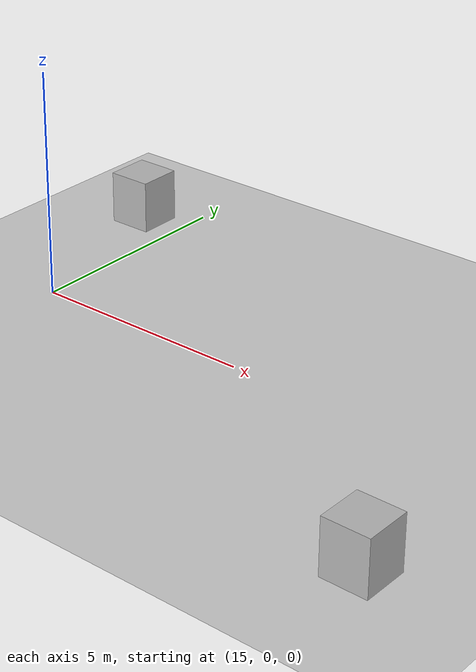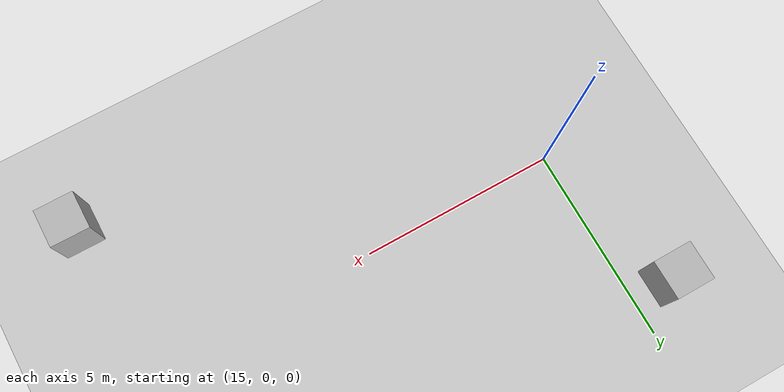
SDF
<?xml version="1.0"?>
<sdf version="1.6">
  <world name="v2-02-cruise-straight-40m">
    <gravity>0 0 -9.81</gravity>
    <physics name="v2_deterministic" type="ode">
      <max_step_size>0.002</max_step_size>
      <real_time_update_rate>500</real_time_update_rate>
    </physics>
    <include>
      <uri>model://sun</uri>
    </include>
    <include>
      <uri>model://ground_plane</uri>
    </include>
    <model name="cruise-side-left">
      <static>true</static>
      <pose>14.009223726 4.047599587 0.600000000 0 0 0.000589138</pose>
      <link name="link">
        <collision name="collision">
          <geometry>
            <box>
              <size>1.000000 1.000000 1.200000</size>
            </box>
          </geometry>
        </collision>
        <visual name="visual">
          <geometry>
            <box>
              <size>1.000000 1.000000 1.200000</size>
            </box>
          </geometry>
        </visual>
      </link>
    </model>
    <model name="cruise-side-right">
      <static>true</static>
      <pose>25.960074840 -3.984674038 0.600000000 0 0 -0.007008212</pose>
      <link name="link">
        <collision name="collision">
          <geometry>
            <box>
              <size>1.000000 1.000000 1.200000</size>
            </box>
          </geometry>
        </collision>
        <visual name="visual">
          <geometry>
            <box>
              <size>1.000000 1.000000 1.200000</size>
            </box>
          </geometry>
        </visual>
      </link>
    </model>
  </world>
</sdf>
